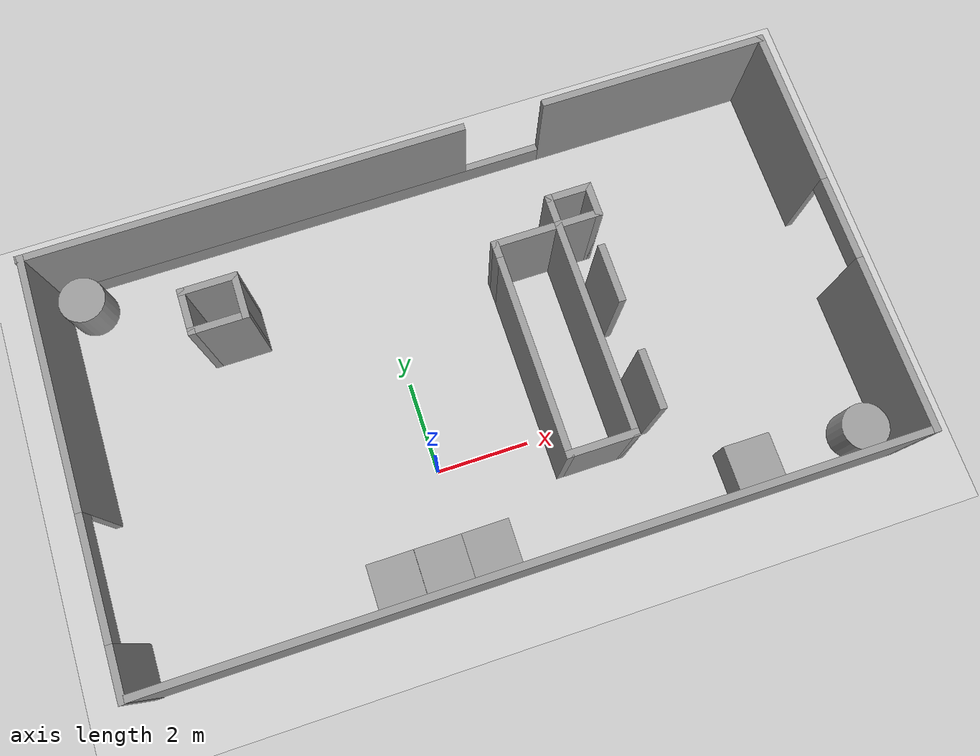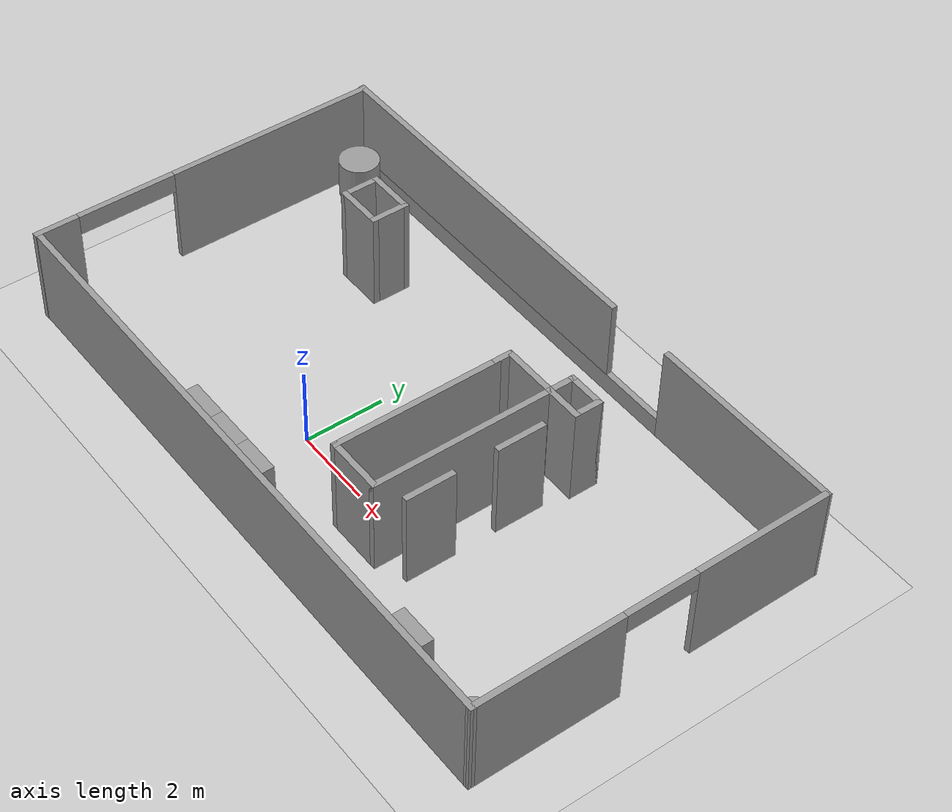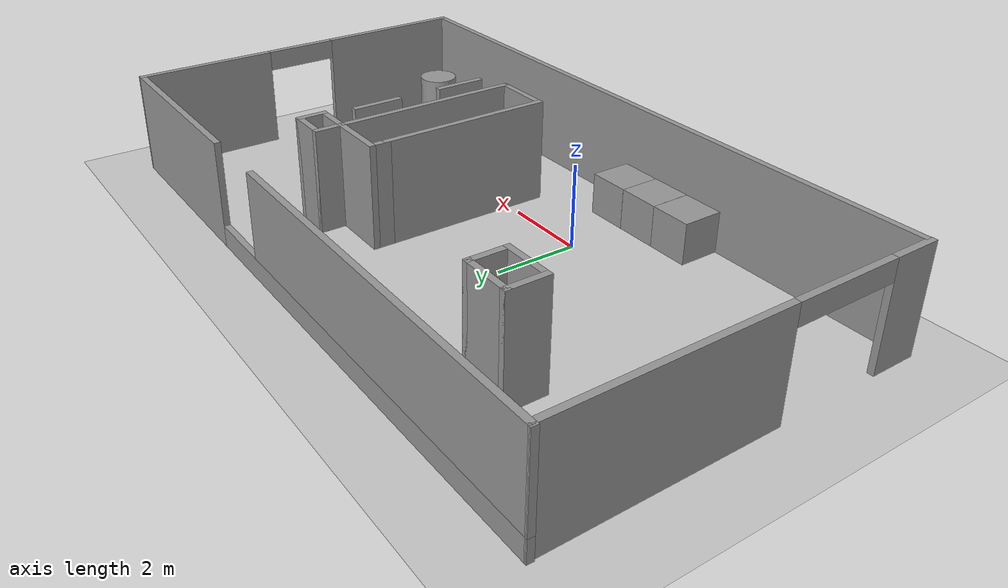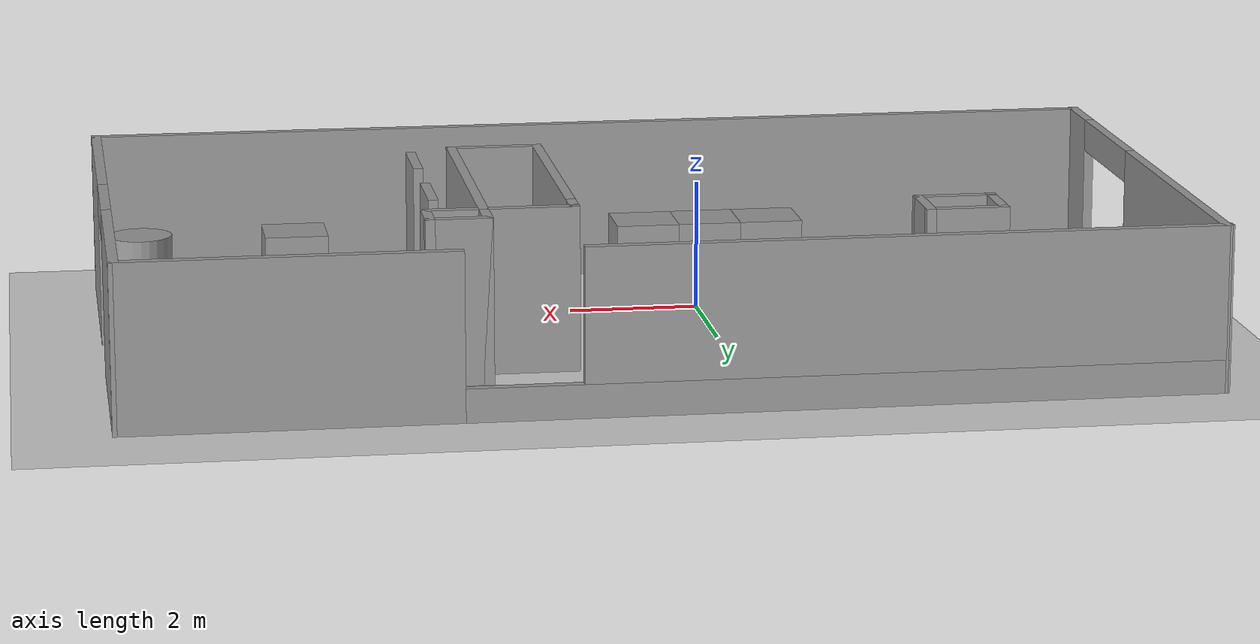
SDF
<sdf version="1.7">
 <world name="default">
  <light name="sun" type="directional">
   <pose>0 0 10 0 -0 0</pose>
   <diffuse>0.8 0.8 0.8 1</diffuse>
   <specular>0.2 0.2 0.2 1</specular>
   <attenuation>
    <range>1000</range>
    <constant>0.9</constant>
    <linear>0.01</linear>
    <quadratic>0.001</quadratic>
   </attenuation>
   <direction>-0.5 0.1 -0.9</direction>
   <spot><inner_angle>0</inner_angle><outer_angle>0</outer_angle><falloff>0</falloff></spot>
  </light>
  <model name="ground_plane">
   <static>1</static>
   <link name="link">
    <collision name="collision">
     <geometry><plane><normal>0 0 1</normal><size>100 100</size></plane></geometry>
     <surface>
      <contact><collide_bitmask>65535</collide_bitmask></contact>
      <friction><ode><mu>100</mu><mu2>50</mu2></ode></friction>
     </surface>
    </collision>
    <visual name="visual">
     <cast_shadows>0</cast_shadows>
     <geometry><plane><normal>0 0 1</normal><size>100 100</size></plane></geometry>
     <material>
      <script><uri>file://media/materials/scripts/gazebo.material</uri><name>Gazebo/Grey</name></script>
     </material>
    </visual>
   </link>
  </model>
  <gravity>0 0 -9.8</gravity>
  <magnetic_field>6e-06 2.3e-05 -4.2e-05</magnetic_field>
  <atmosphere type="adiabatic"/>
  <physics type="ode">
   <max_step_size>0.001</max_step_size>
   <real_time_factor>1</real_time_factor>
   <real_time_update_rate>1000</real_time_update_rate>
  </physics>
  <scene><ambient>0.4 0.4 0.4 1</ambient><background>0.7 0.7 0.7 1</background><shadows>1</shadows></scene>
  <spherical_coordinates>
   <surface_model>EARTH_WGS84</surface_model>
   <latitude_deg>0</latitude_deg>
   <longitude_deg>0</longitude_deg>
   <elevation>0</elevation>
   <heading_deg>0</heading_deg>
  </spherical_coordinates>
  <model name="in_door">
   <pose>1.2608 1.86112 0 0 -0 0</pose>
   <link name="Wall_0">
    <collision name="Wall_0_Collision">
     <geometry><box><size>16 0.15 2.5</size></box></geometry>
     <pose>0 0 1.25 0 -0 0</pose>
    </collision>
    <visual name="Wall_0_Visual">
     <pose>0 0 1.25 0 -0 0</pose>
     <geometry><box><size>16 0.15 2.5</size></box></geometry>
     <material>
      <script><uri>file://media/materials/scripts/gazebo.material</uri><name>Gazebo/Grey</name></script>
      <ambient>1 1 1 1</ambient>
     </material>
     <meta><layer>0</layer></meta>
    </visual>
    <pose>0.07387 -4.41852 0 0 -0 0</pose>
   </link>
   <link name="Wall_1">
    <pose>7.9861 0.006477 0 0 -0 1.57368</pose>
    <visual name="Wall_1_Visual_0">
     <pose>-2.63318 0 1.25 0 -0 0</pose>
     <geometry><box><size>3.73365 0.15 2.5</size></box></geometry>
     <material>
      <script><uri>file://media/materials/scripts/gazebo.material</uri><name>Gazebo/Grey</name></script>
      <ambient>1 1 1 1</ambient>
     </material>
     <meta><layer>0</layer></meta>
    </visual>
    <collision name="Wall_1_Collision_0">
     <geometry><box><size>3.73365 0.15 2.5</size></box></geometry>
     <pose>-2.63318 0 1.25 0 -0 0</pose>
    </collision>
    <visual name="Wall_1_Visual_1">
     <pose>2.76682 0 1.25 0 -0 0</pose>
     <geometry><box><size>3.46635 0.15 2.5</size></box></geometry>
     <material>
      <script><uri>file://media/materials/scripts/gazebo.material</uri><name>Gazebo/Grey</name></script>
      <ambient>1 1 1 1</ambient>
     </material>
     <meta><layer>0</layer></meta>
    </visual>
    <collision name="Wall_1_Collision_1">
     <geometry><box><size>3.46635 0.15 2.5</size></box></geometry>
     <pose>2.76682 0 1.25 0 -0 0</pose>
    </collision>
    <visual name="Wall_1_Visual_2">
     <pose>0.133649 0 2.25 0 -0 0</pose>
     <geometry><box><size>1.8 0.15 0.5</size></box></geometry>
     <material>
      <script><uri>file://media/materials/scripts/gazebo.material</uri><name>Gazebo/Grey</name></script>
      <ambient>1 1 1 1</ambient>
     </material>
     <meta><layer>0</layer></meta>
    </visual>
    <collision name="Wall_1_Collision_2">
     <geometry><box><size>1.8 0.15 0.5</size></box></geometry>
     <pose>0.133649 0 2.25 0 -0 0</pose>
    </collision>
   </link>
   <link name="Wall_10">
    <collision name="Wall_10_Collision">
     <geometry><box><size>4.25 0.15 2.5</size></box></geometry>
     <pose>0 0 1.25 0 -0 0</pose>
    </collision>
    <visual name="Wall_10_Visual">
     <pose>0 0 1.25 0 -0 0</pose>
     <geometry><box><size>4.25 0.15 2.5</size></box></geometry>
     <material>
      <script><uri>file://media/materials/scripts/gazebo.material</uri><name>Gazebo/Grey</name></script>
      <ambient>1 1 1 1</ambient>
     </material>
     <meta><layer>0</layer></meta>
    </visual>
    <pose>1.15636 -0.655521 0 0 -0 -1.5708</pose>
   </link>
   <link name="Wall_11">
    <collision name="Wall_11_Collision">
     <geometry><box><size>1.5 0.15 2.5</size></box></geometry>
     <pose>0 0 1.25 0 -0 0</pose>
    </collision>
    <visual name="Wall_11_Visual">
     <pose>0 0 1.25 0 -0 0</pose>
     <geometry><box><size>1.5 0.15 2.5</size></box></geometry>
     <material>
      <script><uri>file://media/materials/scripts/gazebo.material</uri><name>Gazebo/Grey</name></script>
      <ambient>1 1 1 1</ambient>
     </material>
     <meta><layer>0</layer></meta>
    </visual>
    <pose>1.83136 -2.70552 0 0 -0 0</pose>
   </link>
   <link name="Wall_12">
    <collision name="Wall_12_Collision">
     <geometry><box><size>4.59177 0.15 2.5</size></box></geometry>
     <pose>0 0 1.25 0 -0 0</pose>
    </collision>
    <visual name="Wall_12_Visual">
     <pose>0 0 1.25 0 -0 0</pose>
     <geometry><box><size>4.59177 0.15 2.5</size></box></geometry>
     <material>
      <script><uri>file://media/materials/scripts/gazebo.material</uri><name>Gazebo/Grey</name></script>
      <ambient>1 1 1 1</ambient>
     </material>
     <meta><layer>0</layer></meta>
    </visual>
    <pose>2.50636 -0.484635 0 0 -0 1.5708</pose>
   </link>
   <link name="Wall_13">
    <collision name="Wall_13_Collision">
     <geometry><box><size>1.5 0.15 2.5</size></box></geometry>
     <pose>0 0 1.25 0 -0 0</pose>
    </collision>
    <visual name="Wall_13_Visual">
     <pose>0 0 1.25 0 -0 0</pose>
     <geometry><box><size>1.5 0.15 2.5</size></box></geometry>
     <material>
      <script><uri>file://media/materials/scripts/gazebo.material</uri><name>Gazebo/Grey</name></script>
      <ambient>1 1 1 1</ambient>
     </material>
     <meta><layer>0</layer></meta>
    </visual>
    <pose>1.83136 1.76684 0 0 -0 3.14159</pose>
   </link>
   <link name="Wall_14">
    <collision name="Wall_14_Collision">
     <geometry><box><size>0.491771 0.15 2.5</size></box></geometry>
     <pose>0 0 1.25 0 -0 0</pose>
    </collision>
    <visual name="Wall_14_Visual">
     <pose>0 0 1.25 0 -0 0</pose>
     <geometry><box><size>0.491771 0.15 2.5</size></box></geometry>
     <material>
      <script><uri>file://media/materials/scripts/gazebo.material</uri><name>Gazebo/Grey</name></script>
      <ambient>1 1 1 1</ambient>
     </material>
     <meta><layer>0</layer></meta>
    </visual>
    <pose>1.15636 1.56536 0 0 -0 -1.5708</pose>
   </link>
   <link name="Wall_17">
    <collision name="Wall_17_Collision">
     <geometry><box><size>1 0.15 2.5</size></box></geometry>
     <pose>0 0 1.25 0 -0 0</pose>
    </collision>
    <visual name="Wall_17_Visual">
     <pose>0 0 1.25 0 -0 0</pose>
     <geometry><box><size>1 0.15 2.5</size></box></geometry>
     <material>
      <script><uri>file://media/materials/scripts/gazebo.material</uri><name>Gazebo/Grey</name></script>
      <ambient>1 1 1 1</ambient>
     </material>
     <meta><layer>0</layer></meta>
    </visual>
    <pose>2.93136 1.76684 0 0 -0 0</pose>
   </link>
   <link name="Wall_18">
    <collision name="Wall_18_Collision">
     <geometry><box><size>0.75 0.15 2.5</size></box></geometry>
     <pose>0 0 1.25 0 -0 0</pose>
    </collision>
    <visual name="Wall_18_Visual">
     <pose>0 0 1.25 0 -0 0</pose>
     <geometry><box><size>0.75 0.15 2.5</size></box></geometry>
     <material>
      <script><uri>file://media/materials/scripts/gazebo.material</uri><name>Gazebo/Grey</name></script>
      <ambient>1 1 1 1</ambient>
     </material>
     <meta><layer>0</layer></meta>
    </visual>
    <pose>3.35636 2.06684 0 0 -0 1.5708</pose>
   </link>
   <link name="Wall_2">
    <pose>-0.012848 4.4249 0 0 -0 -3.14077</pose>
    <visual name="Wall_2_Visual_0">
     <pose>-5.57555 0 1.25 0 -0 0</pose>
     <geometry><box><size>4.97126 0.15 2.5</size></box></geometry>
     <material>
      <script><uri>file://media/materials/scripts/gazebo.material</uri><name>Gazebo/Grey</name></script>
      <ambient>1 1 1 1</ambient>
     </material>
     <meta><layer>0</layer></meta>
    </visual>
    <collision name="Wall_2_Collision_0">
     <geometry><box><size>4.97126 0.15 2.5</size></box></geometry>
     <pose>-5.57555 0 1.25 0 -0 0</pose>
    </collision>
    <visual name="Wall_2_Visual_1">
     <pose>2.48563 0 0.25 0 -0 0</pose>
     <geometry><box><size>11.1511 0.15 0.5</size></box></geometry>
     <material>
      <script><uri>file://media/materials/scripts/gazebo.material</uri><name>Gazebo/Grey</name></script>
      <ambient>1 1 1 1</ambient>
     </material>
     <meta><layer>0</layer></meta>
    </visual>
    <collision name="Wall_2_Collision_1">
     <geometry><box><size>11.1511 0.15 0.5</size></box></geometry>
     <pose>2.48563 0 0.25 0 -0 0</pose>
    </collision>
    <visual name="Wall_2_Visual_2">
     <pose>3.33563 0 1.5 0 -0 0</pose>
     <geometry><box><size>9.45109 0.15 2</size></box></geometry>
     <material>
      <script><uri>file://media/materials/scripts/gazebo.material</uri><name>Gazebo/Grey</name></script>
      <ambient>1 1 1 1</ambient>
     </material>
     <meta><layer>0</layer></meta>
    </visual>
    <collision name="Wall_2_Collision_2">
     <geometry><box><size>9.45109 0.15 2</size></box></geometry>
     <pose>3.33563 0 1.5 0 -0 0</pose>
    </collision>
   </link>
   <link name="Wall_22">
    <collision name="Wall_22_Collision">
     <geometry><box><size>0.75 0.15 2.5</size></box></geometry>
     <pose>0 0 1.25 0 -0 0</pose>
    </collision>
    <visual name="Wall_22_Visual">
     <pose>0 0 1.25 0 -0 0</pose>
     <geometry><box><size>0.75 0.15 2.5</size></box></geometry>
     <material>
      <script><uri>file://media/materials/scripts/gazebo.material</uri><name>Gazebo/Grey</name></script>
      <ambient>1 1 1 1</ambient>
     </material>
     <meta><layer>0</layer></meta>
    </visual>
    <pose>2.50636 2.06684 0 0 -0 1.5708</pose>
   </link>
   <link name="Wall_23">
    <collision name="Wall_23_Collision">
     <geometry><box><size>1 0.15 2.5</size></box></geometry>
     <pose>0 0 1.25 0 -0 0</pose>
    </collision>
    <visual name="Wall_23_Visual">
     <pose>0 0 1.25 0 -0 0</pose>
     <geometry><box><size>1 0.15 2.5</size></box></geometry>
     <material>
      <script><uri>file://media/materials/scripts/gazebo.material</uri><name>Gazebo/Grey</name></script>
      <ambient>1 1 1 1</ambient>
     </material>
     <meta><layer>0</layer></meta>
    </visual>
    <pose>2.93136 2.36684 0 0 -0 0</pose>
   </link>
   <link name="Wall_25">
    <collision name="Wall_25_Collision">
     <geometry><box><size>1.25 0.15 2.5</size></box></geometry>
     <pose>0 0 1.25 0 -0 0</pose>
    </collision>
    <visual name="Wall_25_Visual">
     <pose>0 0 1.25 0 -0 0</pose>
     <geometry><box><size>1.25 0.15 2.5</size></box></geometry>
     <material>
      <script><uri>file://media/materials/scripts/gazebo.material</uri><name>Gazebo/Grey</name></script>
      <ambient>1 1 1 1</ambient>
     </material>
     <meta><layer>0</layer></meta>
    </visual>
    <pose>3.17532 0.476148 0 0 -0 1.5708</pose>
   </link>
   <link name="Wall_27">
    <collision name="Wall_27_Collision">
     <geometry><box><size>1.25 0.15 2.5</size></box></geometry>
     <pose>0 0 1.25 0 -0 0</pose>
    </collision>
    <visual name="Wall_27_Visual">
     <pose>0 0 1.25 0 -0 0</pose>
     <geometry><box><size>1.25 0.15 2.5</size></box></geometry>
     <material>
      <script><uri>file://media/materials/scripts/gazebo.material</uri><name>Gazebo/Grey</name></script>
      <ambient>1 1 1 1</ambient>
     </material>
     <meta><layer>0</layer></meta>
    </visual>
    <pose>3.17532 -1.81687 0 0 -0 -1.5708</pose>
   </link>
   <link name="Wall_3">
    <pose>-7.96843 -0.006674 0 0 -0 -1.5708</pose>
    <visual name="Wall_3_Visual_0">
     <pose>-1.80134 0 1.25 0 -0 0</pose>
     <geometry><box><size>5.39731 0.15 2.5</size></box></geometry>
     <material>
      <script><uri>file://media/materials/scripts/gazebo.material</uri><name>Gazebo/Grey</name></script>
      <ambient>1 1 1 1</ambient>
     </material>
     <meta><layer>0</layer></meta>
    </visual>
    <collision name="Wall_3_Collision_0">
     <geometry><box><size>5.39731 0.15 2.5</size></box></geometry>
     <pose>-1.80134 0 1.25 0 -0 0</pose>
    </collision>
    <visual name="Wall_3_Visual_1">
     <pose>3.94866 0 1.25 0 -0 0</pose>
     <geometry><box><size>1.10269 0.15 2.5</size></box></geometry>
     <material>
      <script><uri>file://media/materials/scripts/gazebo.material</uri><name>Gazebo/Grey</name></script>
      <ambient>1 1 1 1</ambient>
     </material>
     <meta><layer>0</layer></meta>
    </visual>
    <collision name="Wall_3_Collision_1">
     <geometry><box><size>1.10269 0.15 2.5</size></box></geometry>
     <pose>3.94866 0 1.25 0 -0 0</pose>
    </collision>
    <visual name="Wall_3_Visual_2">
     <pose>2.14731 0 2.25 0 -0 0</pose>
     <geometry><box><size>2.5 0.15 0.5</size></box></geometry>
     <material>
      <script><uri>file://media/materials/scripts/gazebo.material</uri><name>Gazebo/Grey</name></script>
      <ambient>1 1 1 1</ambient>
     </material>
     <meta><layer>0</layer></meta>
    </visual>
    <collision name="Wall_3_Collision_2">
     <geometry><box><size>2.5 0.15 0.5</size></box></geometry>
     <pose>2.14731 0 2.25 0 -0 0</pose>
    </collision>
   </link>
   <link name="Wall_5">
    <collision name="Wall_5_Collision">
     <geometry><box><size>1.25 0.15 2.5</size></box></geometry>
     <pose>0 0 1.25 0 -0 0</pose>
    </collision>
    <visual name="Wall_5_Visual">
     <pose>0 0 1.25 0 -0 0</pose>
     <geometry><box><size>1.25 0.15 2.5</size></box></geometry>
     <material>
      <script><uri>file://media/materials/scripts/gazebo.material</uri><name>Gazebo/Grey</name></script>
      <ambient>1 1 1 1</ambient>
     </material>
     <meta><layer>0</layer></meta>
    </visual>
    <pose>-4.53404 2.74045 0 0 -0 0</pose>
   </link>
   <link name="Wall_6">
    <collision name="Wall_6_Collision">
     <geometry><box><size>1 0.15 2.5</size></box></geometry>
     <pose>0 0 1.25 0 -0 0</pose>
    </collision>
    <visual name="Wall_6_Visual">
     <pose>0 0 1.25 0 -0 0</pose>
     <geometry><box><size>1 0.15 2.5</size></box></geometry>
     <material>
      <script><uri>file://media/materials/scripts/gazebo.material</uri><name>Gazebo/Grey</name></script>
      <ambient>1 1 1 1</ambient>
     </material>
     <meta><layer>0</layer></meta>
    </visual>
    <pose>-3.98405 2.31545 0 0 -0 -1.5708</pose>
   </link>
   <link name="Wall_7">
    <collision name="Wall_7_Collision">
     <geometry><box><size>1.25 0.15 2.5</size></box></geometry>
     <pose>0 0 1.25 0 -0 0</pose>
    </collision>
    <visual name="Wall_7_Visual">
     <pose>0 0 1.25 0 -0 0</pose>
     <geometry><box><size>1.25 0.15 2.5</size></box></geometry>
     <material>
      <script><uri>file://media/materials/scripts/gazebo.material</uri><name>Gazebo/Grey</name></script>
      <ambient>1 1 1 1</ambient>
     </material>
     <meta><layer>0</layer></meta>
    </visual>
    <pose>-4.53404 1.89045 0 0 -0 3.14159</pose>
   </link>
   <link name="Wall_8">
    <collision name="Wall_8_Collision">
     <geometry><box><size>1 0.15 2.5</size></box></geometry>
     <pose>0 0 1.25 0 -0 0</pose>
    </collision>
    <visual name="Wall_8_Visual">
     <pose>0 0 1.25 0 -0 0</pose>
     <geometry><box><size>1 0.15 2.5</size></box></geometry>
     <material>
      <script><uri>file://media/materials/scripts/gazebo.material</uri><name>Gazebo/Grey</name></script>
      <ambient>1 1 1 1</ambient>
     </material>
     <meta><layer>0</layer></meta>
    </visual>
    <pose>-5.08405 2.31545 0 0 -0 1.5708</pose>
   </link>
   <static>1</static>
  </model>
  <model name="unit_box">
   <pose>-0.463794 -1.98238 0.5 1e-06 0 -4e-05</pose>
   <link name="link">
    <inertial>
     <mass>1</mass>
     <inertia>
      <ixx>0.166667</ixx>
      <ixy>0</ixy>
      <ixz>0</ixz>
      <iyy>0.166667</iyy>
      <iyz>0</iyz>
      <izz>0.166667</izz>
     </inertia>
    </inertial>
    <collision name="collision"><geometry><box><size>1 1 1</size></box></geometry></collision>
    <visual name="visual">
     <geometry><box><size>1 1 1</size></box></geometry>
     <material>
      <script><name>Gazebo/Grey</name><uri>file://media/materials/scripts/gazebo.material</uri></script>
     </material>
    </visual>
   </link>
  </model>
  <model name="unit_box_0">
   <pose>0.536234 -1.97981 0.499995 0 1e-05 -2.5e-05</pose>
   <link name="link">
    <inertial>
     <mass>1</mass>
     <inertia>
      <ixx>0.166667</ixx>
      <ixy>0</ixy>
      <ixz>0</ixz>
      <iyy>0.166667</iyy>
      <iyz>0</iyz>
      <izz>0.166667</izz>
     </inertia>
    </inertial>
    <collision name="collision"><geometry><box><size>1 1 1</size></box></geometry></collision>
    <visual name="visual">
     <geometry><box><size>1 1 1</size></box></geometry>
     <material>
      <script><name>Gazebo/Grey</name><uri>file://media/materials/scripts/gazebo.material</uri></script>
     </material>
    </visual>
   </link>
  </model>
  <model name="unit_box_1">
   <pose>-1.46633 -1.98219 0.499995 -1e-05 -0 -7.6e-05</pose>
   <link name="link">
    <inertial>
     <mass>1</mass>
     <inertia>
      <ixx>0.166667</ixx>
      <ixy>0</ixy>
      <ixz>0</ixz>
      <iyy>0.166667</iyy>
      <iyz>0</iyz>
      <izz>0.166667</izz>
     </inertia>
    </inertial>
    <collision name="collision"><geometry><box><size>1 1 1</size></box></geometry></collision>
    <visual name="visual">
     <geometry><box><size>1 1 1</size></box></geometry>
     <material>
      <script><name>Gazebo/Grey</name><uri>file://media/materials/scripts/gazebo.material</uri></script>
     </material>
    </visual>
   </link>
  </model>
  <model name="unit_cylinder">
   <pose>-6.10383 5.69487 0.499993 -3e-06 2e-06 0</pose>
   <link name="link">
    <inertial>
     <mass>1</mass>
     <inertia><ixx>0.145833</ixx><ixy>0</ixy><ixz>0</ixz><iyy>0.145833</iyy><iyz>0</iyz><izz>0.125</izz></inertia>
    </inertial>
    <collision name="collision">
     <geometry><cylinder><radius>0.5</radius><length>1</length></cylinder></geometry>
    </collision>
    <visual name="visual">
     <geometry><cylinder><radius>0.5</radius><length>1</length></cylinder></geometry>
     <material>
      <script><name>Gazebo/Grey</name><uri>file://media/materials/scripts/gazebo.material</uri></script>
     </material>
    </visual>
   </link>
  </model>
  <model name="unit_cylinder_0">
   <pose>8.6209 -1.9824 0.499997 3e-06 2e-06 -3.5e-05</pose>
   <link name="link">
    <inertial>
     <mass>1</mass>
     <inertia><ixx>0.145833</ixx><ixy>0</ixy><ixz>0</ixz><iyy>0.145833</iyy><iyz>0</iyz><izz>0.125</izz></inertia>
    </inertial>
    <collision name="collision">
     <geometry><cylinder><radius>0.5</radius><length>1</length></cylinder></geometry>
    </collision>
    <visual name="visual">
     <geometry><cylinder><radius>0.5</radius><length>1</length></cylinder></geometry>
     <material>
      <script><name>Gazebo/Grey</name><uri>file://media/materials/scripts/gazebo.material</uri></script>
     </material>
    </visual>
   </link>
  </model>
  <model name="unit_box_2">
   <pose>6.17342 -1.97397 0.499995 1e-05 -0 -2e-06</pose>
   <link name="link">
    <inertial>
     <mass>1</mass>
     <inertia>
      <ixx>0.166667</ixx>
      <ixy>0</ixy>
      <ixz>0</ixz>
      <iyy>0.166667</iyy>
      <iyz>0</iyz>
      <izz>0.166667</izz>
     </inertia>
    </inertial>
    <collision name="collision"><geometry><box><size>1 1 1</size></box></geometry></collision>
    <visual name="visual">
     <geometry><box><size>1 1 1</size></box></geometry>
     <material>
      <script><name>Gazebo/Grey</name><uri>file://media/materials/scripts/gazebo.material</uri></script>
     </material>
    </visual>
   </link>
  </model>
 </world>
</sdf>
